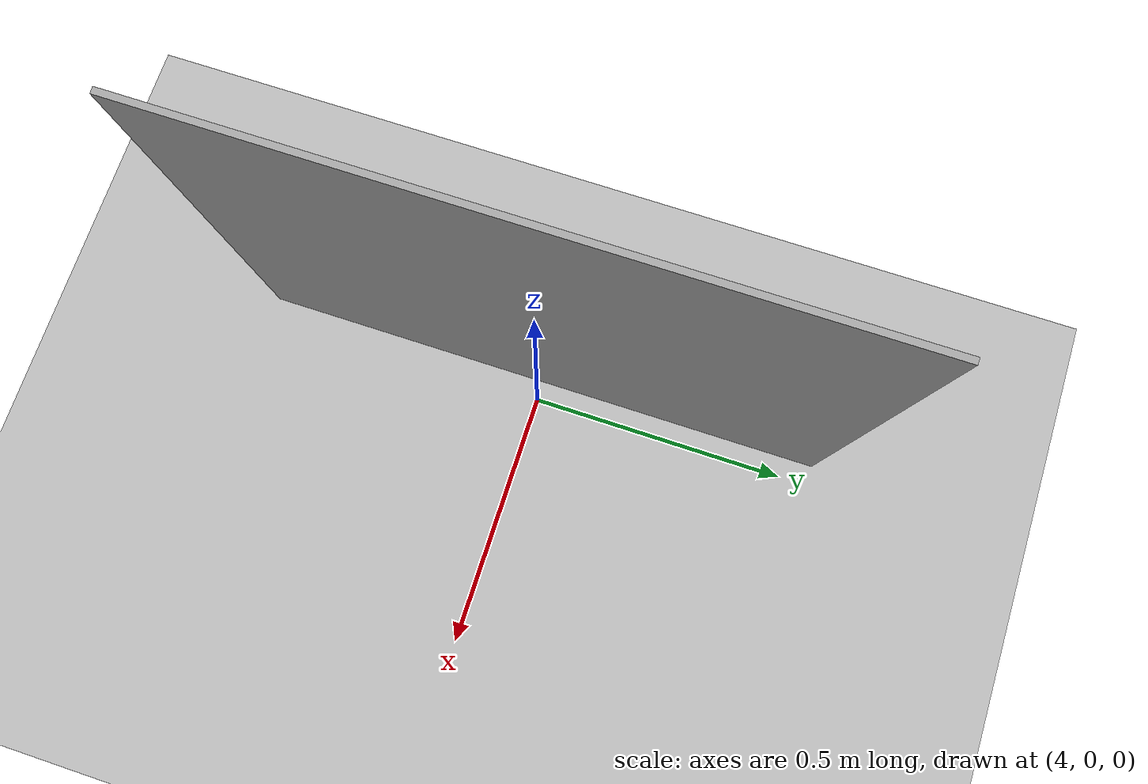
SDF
<?xml version="1.0"?>
<sdf version='1.4'>
  <world name='checkerboard_world'>
    <!-- A global light source -->
    <include>
      <uri>model://sun</uri>
    </include>

    <!-- A ground plane -->
    <include>
      <uri>model://ground_plane</uri>
    </include>

    <physics type="ode">
      <real_time_update_rate>1000.0</real_time_update_rate>
      <max_step_size>0.001</max_step_size>
      <real_time_factor>1</real_time_factor>
      <ode>
        <solver>
          <type>quick</type>
          <iters>150</iters>
          <precon_iters>0</precon_iters>
          <sor>1.400000</sor>
          <use_dynamic_moi_rescaling>1</use_dynamic_moi_rescaling>
        </solver>
        <constraints>
          <cfm>0.00001</cfm>
          <erp>0.2</erp>
          <contact_max_correcting_vel>2000.000000</contact_max_correcting_vel>
          <contact_surface_layer>0.01000</contact_surface_layer>
        </constraints>
      </ode>
    </physics>

   <model name="checkerboard">
      <static>true</static>
      <pose frame="">4 0 0.5 0 -1.5 0</pose>
      <link name="checkerboard_link">
        <visual name="checkerboard_visual">
          <cast_shadows>true</cast_shadows>
          <geometry>
            <mesh>
              <uri>file://models/checkerboard/checkerboard.dae</uri>
              <scale>1 1 1</scale>
            </mesh>
          </geometry>
        </visual>
      </link>
    </model>

    <scene>
      <ambient>0.4 0.4 0.4 1</ambient>
      <background>0.7 0.7 0.7 1</background>
      <shadows>true</shadows>
    </scene>

  </world>

</sdf>
